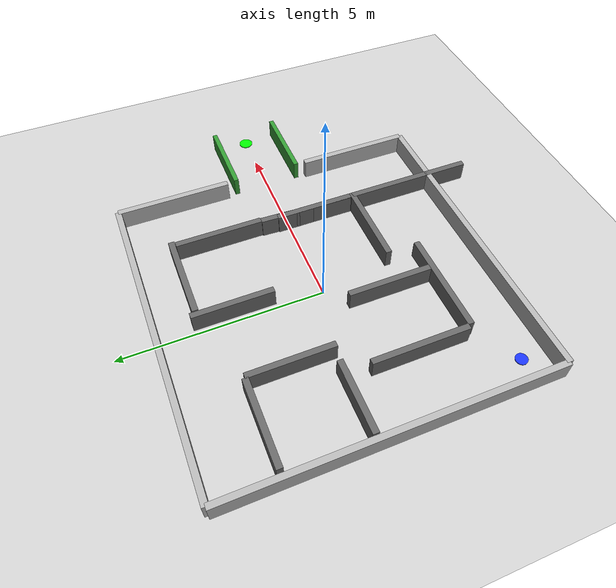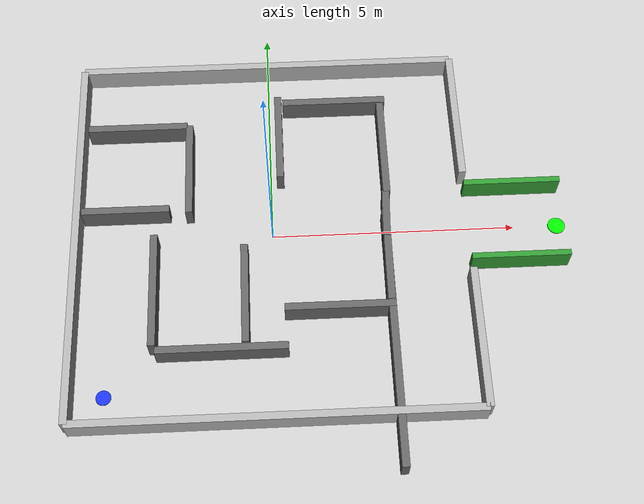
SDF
<sdf version="1.7">
 <world name="gopigo3_maze_wide_exit">
  <light name="sun" type="directional">
   <pose>0 0 10 0 -0 0</pose>
   <diffuse>0.8 0.8 0.8 1</diffuse>
   <specular>0.2 0.2 0.2 1</specular>
   <attenuation>
    <range>1000</range>
    <constant>0.9</constant>
    <linear>0.01</linear>
    <quadratic>0.001</quadratic>
   </attenuation>
   <direction>-0.5 0.1 -0.9</direction>
   <spot><inner_angle>0</inner_angle><outer_angle>0</outer_angle><falloff>0</falloff></spot>
  </light>
  <model name="ground_plane">
   <static>1</static>
   <link name="link">
    <collision name="collision">
     <geometry><plane><normal>0 0 1</normal><size>100 100</size></plane></geometry>
     <surface><friction><ode><mu>100</mu><mu2>50</mu2></ode></friction></surface>
    </collision>
    <visual name="visual">
     <cast_shadows>0</cast_shadows>
     <geometry><plane><normal>0 0 1</normal><size>100 100</size></plane></geometry>
     <material>
      <script><uri>file://media/materials/scripts/gazebo.material</uri><name>Gazebo/Grey</name></script>
     </material>
    </visual>
   </link>
  </model>
  <physics type="ode">
   <real_time_update_rate>1000</real_time_update_rate>
   <max_step_size>0.001</max_step_size>
   <real_time_factor>1</real_time_factor>
  </physics>
  <model name="outer_wall_top">
   <static>1</static>
   <pose>0 4 0.25 0 -0 0</pose>
   <link name="link">
    <collision name="collision"><geometry><box><size>8 0.15 0.5</size></box></geometry></collision>
    <visual name="visual">
     <geometry><box><size>8 0.15 0.5</size></box></geometry>
     <material><ambient>0.7 0.7 0.7 1</ambient></material>
    </visual>
   </link>
  </model>
  <model name="outer_wall_bottom">
   <static>1</static>
   <pose>0 -4 0.25 0 -0 0</pose>
   <link name="link">
    <collision name="collision"><geometry><box><size>8 0.15 0.5</size></box></geometry></collision>
    <visual name="visual">
     <geometry><box><size>8 0.15 0.5</size></box></geometry>
     <material><ambient>0.7 0.7 0.7 1</ambient></material>
    </visual>
   </link>
  </model>
  <model name="outer_wall_left">
   <static>1</static>
   <pose>-4 0 0.25 0 -0 0</pose>
   <link name="link">
    <collision name="collision"><geometry><box><size>0.15 8 0.5</size></box></geometry></collision>
    <visual name="visual">
     <geometry><box><size>0.15 8 0.5</size></box></geometry>
     <material><ambient>0.7 0.7 0.7 1</ambient></material>
    </visual>
   </link>
  </model>
  <model name="outer_wall_right_upper">
   <static>1</static>
   <pose>4 2.55 0.25 0 -0 0</pose>
   <link name="link">
    <collision name="collision"><geometry><box><size>0.15 2.9 0.5</size></box></geometry></collision>
    <visual name="visual">
     <geometry><box><size>0.15 2.9 0.5</size></box></geometry>
     <material><ambient>0.7 0.7 0.7 1</ambient></material>
    </visual>
   </link>
  </model>
  <model name="outer_wall_right_lower">
   <static>1</static>
   <pose>4 -2.55 0.25 0 -0 0</pose>
   <link name="link">
    <collision name="collision"><geometry><box><size>0.15 2.9 0.5</size></box></geometry></collision>
    <visual name="visual">
     <geometry><box><size>0.15 2.9 0.5</size></box></geometry>
     <material><ambient>0.7 0.7 0.7 1</ambient></material>
    </visual>
   </link>
  </model>
  <model name="wall_01">
   <static>1</static>
   <pose>-2.8 2.5 0.25 0 -0 0</pose>
   <link name="link">
    <collision name="collision"><geometry><box><size>2.1 0.15 0.5</size></box></geometry></collision>
    <visual name="visual">
     <geometry><box><size>2.1 0.15 0.5</size></box></geometry>
     <material><ambient>0.4 0.4 0.4 1</ambient></material>
    </visual>
   </link>
  </model>
  <model name="wall_02">
   <static>1</static>
   <pose>-1.7 1.45 0.25 0 -0 0</pose>
   <link name="link">
    <collision name="collision"><geometry><box><size>0.15 2.1 0.5</size></box></geometry></collision>
    <visual name="visual">
     <geometry><box><size>0.15 2.1 0.5</size></box></geometry>
     <material><ambient>0.4 0.4 0.4 1</ambient></material>
    </visual>
   </link>
  </model>
  <model name="wall_03">
   <static>1</static>
   <pose>-3 0.5 0.25 0 -0 0</pose>
   <link name="link">
    <collision name="collision"><geometry><box><size>1.8 0.15 0.5</size></box></geometry></collision>
    <visual name="visual">
     <geometry><box><size>1.8 0.15 0.5</size></box></geometry>
     <material><ambient>0.4 0.4 0.4 1</ambient></material>
    </visual>
   </link>
  </model>
  <model name="wall_04">
   <static>1</static>
   <pose>-2.4 -1.3 0.25 0 -0 0</pose>
   <link name="link">
    <collision name="collision"><geometry><box><size>0.15 2.4 0.5</size></box></geometry></collision>
    <visual name="visual">
     <geometry><box><size>0.15 2.4 0.5</size></box></geometry>
     <material><ambient>0.4 0.4 0.4 1</ambient></material>
    </visual>
   </link>
  </model>
  <model name="wall_05">
   <static>1</static>
   <pose>-1.04167 -2.58395 0.210947 0 -0 0</pose>
   <link name="link">
    <collision name="collision"><geometry><box><size>2.6 0.15 0.5</size></box></geometry></collision>
    <visual name="visual">
     <geometry><box><size>2.6 0.15 0.5</size></box></geometry>
     <material><ambient>0.4 0.4 0.4 1</ambient></material>
    </visual>
   </link>
  </model>
  <model name="wall_06">
   <static>1</static>
   <pose>0.2 2.15 0.25 0 -0 0</pose>
   <link name="link">
    <collision name="collision"><geometry><box><size>0.15 2 0.5</size></box></geometry></collision>
    <visual name="visual">
     <geometry><box><size>0.15 2 0.5</size></box></geometry>
     <material><ambient>0.4 0.4 0.4 1</ambient></material>
    </visual>
   </link>
  </model>
  <model name="wall_07">
   <static>1</static>
   <pose>1.4 3 0.25 0 -0 0</pose>
   <link name="link">
    <collision name="collision"><geometry><box><size>2.2 0.15 0.5</size></box></geometry></collision>
    <visual name="visual">
     <geometry><box><size>2.2 0.15 0.5</size></box></geometry>
     <material><ambient>0.4 0.4 0.4 1</ambient></material>
    </visual>
   </link>
  </model>
  <model name="wall_08">
   <static>1</static>
   <pose>2.38977 1.81402 0.25 0 -0 0</pose>
   <link name="link">
    <collision name="collision"><geometry><box><size>0.15 2.2 0.5</size></box></geometry></collision>
    <visual name="visual">
     <geometry><box><size>0.15 2.2 0.5</size></box></geometry>
     <material><ambient>0.4 0.4 0.4 1</ambient></material>
    </visual>
   </link>
  </model>
  <model name="wall_10">
   <static>1</static>
   <pose>-0.576077 -1.44256 0.25 0 -0 0</pose>
   <link name="link">
    <collision name="collision"><geometry><box><size>0.15 2.1 0.5</size></box></geometry></collision>
    <visual name="visual">
     <geometry><box><size>0.15 2.1 0.5</size></box></geometry>
     <material><ambient>0.4 0.4 0.4 1</ambient></material>
    </visual>
   </link>
  </model>
  <model name="wall_11">
   <static>1</static>
   <pose>1.3 -1.8 0.25 0 -0 0</pose>
   <link name="link">
    <collision name="collision"><geometry><box><size>2.2 0.15 0.5</size></box></geometry></collision>
    <visual name="visual">
     <geometry><box><size>2.2 0.15 0.5</size></box></geometry>
     <material><ambient>0.4 0.4 0.4 1</ambient></material>
    </visual>
   </link>
  </model>
  <model name="wall_12">
   <static>1</static>
   <pose>2.32542 -2.39733 0.25 0 -0 0</pose>
   <link name="link">
    <collision name="collision"><geometry><box><size>0.15 5.37318 0.5</size></box></geometry></collision>
    <visual name="visual">
     <geometry><box><size>0.15 5.37318 0.5</size></box></geometry>
     <material><ambient>0.4 0.4 0.4 1</ambient></material>
    </visual>
   </link>
  </model>
  <model name="wall_13">
   <static>1</static>
   <pose>2.32289 -1.00691 0.25 0 0 -1.57819</pose>
   <link name="link">
    <collision name="collision"><geometry><box><size>1.4 0.15 0.5</size></box></geometry></collision>
    <visual name="visual">
     <geometry><box><size>1.4 0.15 0.5</size></box></geometry>
     <material><ambient>0.4 0.4 0.4 1</ambient></material>
    </visual>
   </link>
  </model>
  <model name="wall_14">
   <static>1</static>
   <pose>2.34309 0.215571 0.25 0 0 -1.61268</pose>
   <link name="link">
    <collision name="collision"><geometry><box><size>1 0.15 0.5</size></box></geometry></collision>
    <visual name="visual">
     <geometry><box><size>1 0.15 0.5</size></box></geometry>
     <material><ambient>0.4 0.4 0.4 1</ambient></material>
    </visual>
   </link>
  </model>
  <model name="exit_wall_top">
   <static>1</static>
   <pose>5 0.85 0.25 0 -0 0</pose>
   <link name="link">
    <collision name="collision"><geometry><box><size>2 0.12 0.5</size></box></geometry></collision>
    <visual name="visual">
     <geometry><box><size>2 0.12 0.5</size></box></geometry>
     <material><ambient>0.2 0.6 0.2 1</ambient></material>
    </visual>
   </link>
  </model>
  <model name="exit_wall_bottom">
   <static>1</static>
   <pose>5 -0.85 0.25 0 -0 0</pose>
   <link name="link">
    <collision name="collision"><geometry><box><size>2 0.12 0.5</size></box></geometry></collision>
    <visual name="visual">
     <geometry><box><size>2 0.12 0.5</size></box></geometry>
     <material><ambient>0.2 0.6 0.2 1</ambient></material>
    </visual>
   </link>
  </model>
  <model name="start_marker">
   <static>1</static>
   <pose>-3.35 -3.35 0.01 0 -0 0</pose>
   <link name="link">
    <visual name="visual">
     <geometry><cylinder><radius>0.15</radius><length>0.02</length></cylinder></geometry>
     <material><ambient>0.1 0.2 1 1</ambient></material>
    </visual>
   </link>
  </model>
  <model name="exit_marker">
   <static>1</static>
   <pose>5.9 0 0.01 0 -0 0</pose>
   <link name="link">
    <visual name="visual">
     <geometry><cylinder><radius>0.18</radius><length>0.02</length></cylinder></geometry>
     <material><ambient>0 1 0 1</ambient></material>
    </visual>
   </link>
  </model>
  <gravity>0 0 -9.8</gravity>
  <magnetic_field>6e-06 2.3e-05 -4.2e-05</magnetic_field>
  <atmosphere type="adiabatic"/>
  <scene><ambient>0.4 0.4 0.4 1</ambient><background>0.7 0.7 0.7 1</background><shadows>1</shadows></scene>
  <audio><device>default</device></audio>
  <spherical_coordinates>
   <surface_model>EARTH_WGS84</surface_model>
   <latitude_deg>0</latitude_deg>
   <longitude_deg>0</longitude_deg>
   <elevation>0</elevation>
   <heading_deg>0</heading_deg>
  </spherical_coordinates>
 </world>
</sdf>
